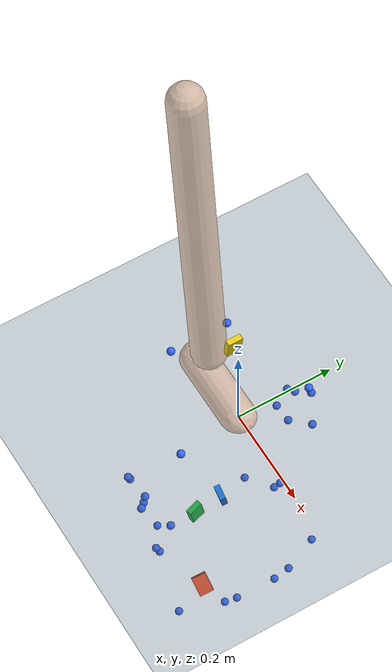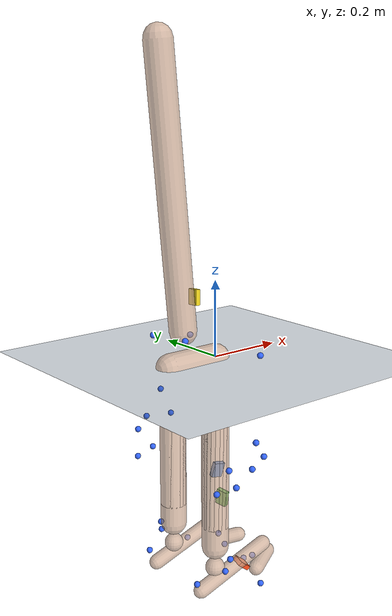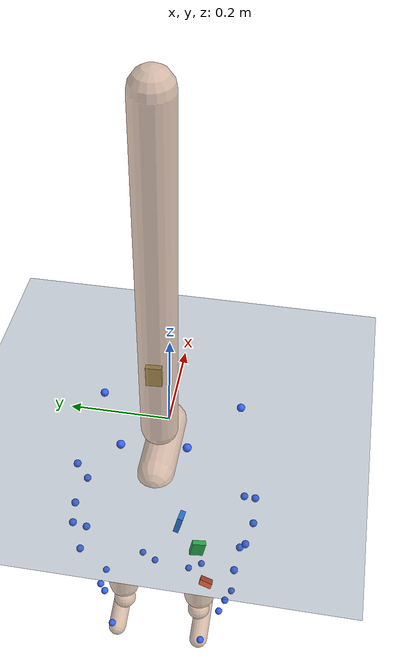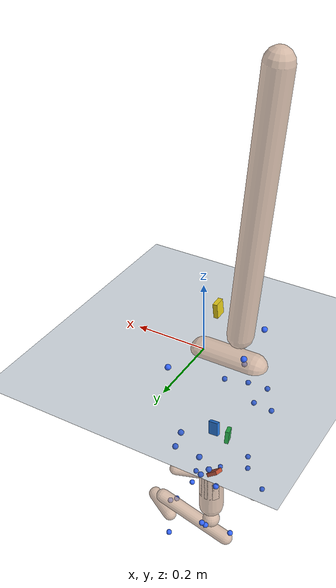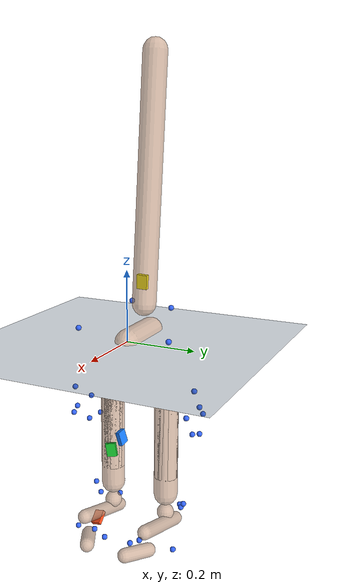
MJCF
<mujoco model="AB06">
  <compiler angle="radian" autolimits="true"/>
  <option timestep="0.005" gravity="0 0 -9.81"><flag contact="disable"/></option>
  <visual><global offwidth="1280" offheight="720"/></visual>
  <default><joint limited="false" damping="0"/><geom contype="0" conaffinity="0"/></default>
  <asset>
    <texture name="grid" type="2d" builtin="checker" rgb1="0.2 0.3 0.4" rgb2="0.3 0.4 0.5" width="512" height="512"/>
    <material name="grid" texture="grid" texrepeat="2 2" texuniform="true"/>
    <material name="skin" rgba="0.8 0.65 0.55 0.7"/>
  </asset>
  <worldbody>
    <light pos="0 0 4" dir="0 0 -1"/>
    <geom name="floor" type="plane" size="0 0 0.05" material="grid"/>
    <body name="pelvis" pos="0 0 0" quat="1 0 0 0">
      <joint name="pelvis_tx" type="slide" axis="1 0 0"/>
      <joint name="pelvis_ty" type="slide" axis="0 0 1"/>
      <joint name="pelvis_tz" type="slide" axis="0 -1 0"/>
      <joint name="pelvis_tilt" type="hinge" axis="0 -1 0"/>
      <joint name="pelvis_list" type="hinge" axis="1 0 0"/>
      <joint name="pelvis_rotation" type="hinge" axis="0 0 1"/>
      <inertial pos="-0.07372656 0 0" mass="12.2367" diaginertia="0.12236747 0.12236747 0.12236747"/>
      <geom type="capsule" fromto="0 0 0 -0.14745312 0 0" size="0.035" material="skin" mass="0"/>
      <site name="m_R_ASIS" pos="0.027854749 -0.13877781 0.029340818" size="0.008" rgba="0.2 0.4 1 1" group="2"/>
      <site name="m_L_ASIS" pos="0.025819645 0.1363009 0.02485285" size="0.008" rgba="0.2 0.4 1 1" group="2"/>
      <site name="m_L_PSIS" pos="-0.14893131 0.064937575 0.06978299" size="0.008" rgba="0.2 0.4 1 1" group="2"/>
      <site name="m_R_PSIS" pos="-0.14399251 -0.058138647 0.079055027" size="0.008" rgba="0.2 0.4 1 1" group="2"/>
      <body name="femur_r" pos="-0.07372656 -0.087074508 -0.068929641" quat="1 0 0 0">
        <joint name="hip_flexion_r" type="hinge" axis="0 -1 0"/>
        <joint name="hip_adduction_r" type="hinge" axis="1 0 0"/>
        <joint name="hip_rotation_r" type="hinge" axis="0 0 1"/>
        <inertial pos="0 0 -0.174591" mass="9.6645" diaginertia="0.096645049 0.096645049 0.096645049"/>
        <geom type="capsule" fromto="0 0 0 0 0 -0.34918199" size="0.035" material="skin" mass="0"/>
        <site name="m_R_Thigh_Upper" pos="0.045811523 -0.10073196 -0.10226908" size="0.008" rgba="0.2 0.4 1 1" group="2"/>
        <site name="m_R_Thigh_Front" pos="0.096388207 -0.075696202 -0.16033469" size="0.008" rgba="0.2 0.4 1 1" group="2"/>
        <site name="m_R_Thigh_Rear" pos="0.032320847 -0.10280851 -0.16778529" size="0.008" rgba="0.2 0.4 1 1" group="2"/>
        <site name="m_R_Knee_Lat" pos="0.0014195441 -0.058915581 -0.419902" size="0.008" rgba="0.2 0.4 1 1" group="2"/>
        <site name="imu_thigh" type="box" size="0.02 0.015 0.006" pos="0.056247425 0.058526741 -0.22793858" quat="0.51204521 0.55384469 -0.53906154 0.37480451" rgba="0.1 0.5 1 1" group="1"/>
        <body name="tibia_r" pos="0 0 0" quat="1 0 0 0">
          <joint name="knee_r_translation1" type="slide" axis="1 0 0"/>
          <joint name="knee_r_translation2" type="slide" axis="0 0 1"/>
          <joint name="knee_angle_r" type="hinge" axis="0 -1 0"/>
          <inertial pos="0 0 -0.20210518" mass="3.85223" diaginertia="0.038522321 0.038522321 0.038522321"/>
          <geom type="capsule" fromto="0 0 0 0 0 -0.40421036" size="0.035" material="skin" mass="0"/>
          <site name="m_R_Shank_Upper" pos="-0.034423126 -0.093363182 -0.15639366" size="0.008" rgba="0.2 0.4 1 1" group="2"/>
          <site name="m_R_Shank_Front" pos="0.00035935059 -0.080800173 -0.21565864" size="0.008" rgba="0.2 0.4 1 1" group="2"/>
          <site name="m_R_Shank_Rear" pos="-0.059069742 -0.076391094 -0.21735671" size="0.008" rgba="0.2 0.4 1 1" group="2"/>
          <site name="m_R_Ankle_Lat" pos="-0.0054319929 -0.04745014 -0.45657552" size="0.008" rgba="0.2 0.4 1 1" group="2"/>
          <site name="imu_shank" type="box" size="0.02 0.015 0.006" pos="0.035111023 0.013497663 -0.28461256" quat="0.70862861 -0.024266526 0.6902225 0.14439363" rgba="0.1 0.8 0.2 1" group="1"/>
          <body name="talus_r" pos="0 0 -0.4654806" quat="1 0 0 0">
            <joint name="ankle_angle_r" type="hinge" axis="-0.10501355 -0.97912632 -0.17402245"/>
            <inertial pos="0 0 0" mass="0.103904" diaginertia="0.0010390377 0.0010390377 0.0010390377"/>
            <geom type="sphere" size="0.025" material="skin" mass="0"/>
            <body name="calcn_r" pos="-0.05279416 -0.0085735031 -0.045411421" quat="1 0 0 0">
              <joint name="subtalar_angle_r" type="hinge" axis="0.78717961 0.12094949 0.60474746"/>
              <inertial pos="0.10557781 0 0.031673342" mass="1.2988" diaginertia="0.012987971 0.012987971 0.012987971"/>
              <geom type="capsule" fromto="0 0 0 0.21115561 0 0.063346684" size="0.02" material="skin" mass="0"/>
              <site name="m_R_Heel" pos="-0.018906522 -0.0065209078 0.027134617" size="0.008" rgba="0.2 0.4 1 1" group="2"/>
              <site name="m_R_Toe_Lat" pos="0.15320158 -0.057721901 -0.010109992" size="0.008" rgba="0.2 0.4 1 1" group="2"/>
              <site name="m_R_Toe_Med" pos="0.19219709 0.053735367 0.0021870993" size="0.008" rgba="0.2 0.4 1 1" group="2"/>
              <site name="m_R_Toe_Tip" pos="0.19640197 0.023192682 0.022142635" size="0.008" rgba="0.2 0.4 1 1" group="2"/>
              <site name="imu_foot" type="box" size="0.02 0.015 0.006" pos="0.1412519 0.0042389761 0.026602154" quat="0.93492248 0.13177433 0.32829929 -0.027839751" rgba="1 0.3 0.1 1" group="1"/>
              <body name="toes_r" pos="0.18877312 -0.0011402403 -0.0021115561" quat="1 0 0 0">
                <joint name="mtp_angle_r" type="hinge" axis="-0.5809544 -0.81393611 0"/>
                <inertial pos="0.036529921 0.018476116 0.0063346684" mass="0.225056" diaginertia="0.0022505556 0.0022505556 0.0022505556"/>
                <geom type="capsule" fromto="0 0 0 0.073059842 0.036952232 0.012669337" size="0.02" material="skin" mass="0"/>
              </body>
            </body>
          </body>
        </body>
      </body>
      <body name="femur_l" pos="-0.07372656 0.087074508 -0.068929641" quat="1 0 0 0">
        <joint name="hip_flexion_l" type="hinge" axis="0 -1 0"/>
        <joint name="hip_adduction_l" type="hinge" axis="-1 0 0"/>
        <joint name="hip_rotation_l" type="hinge" axis="0 0 -1"/>
        <inertial pos="0 0 -0.174591" mass="9.6645" diaginertia="0.096645049 0.096645049 0.096645049"/>
        <geom type="capsule" fromto="0 0 0 0 0 -0.34918199" size="0.035" material="skin" mass="0"/>
        <site name="m_L_Thigh_Upper" pos="0.035039299 0.098625854 -0.058245235" size="0.008" rgba="0.2 0.4 1 1" group="2"/>
        <site name="m_L_Thigh_Front" pos="0.060365593 0.086992548 -0.12989462" size="0.008" rgba="0.2 0.4 1 1" group="2"/>
        <site name="m_L_Thigh_Rear" pos="-0.016339378 0.094992677 -0.12364532" size="0.008" rgba="0.2 0.4 1 1" group="2"/>
        <site name="m_L_Knee_Lat" pos="-0.0011496983 0.056660061 -0.4263916" size="0.008" rgba="0.2 0.4 1 1" group="2"/>
        <body name="tibia_l" pos="0 0 0" quat="1 0 0 0">
          <joint name="knee_l_translation1" type="slide" axis="1 0 0"/>
          <joint name="knee_l_translation2" type="slide" axis="0 0 1"/>
          <joint name="knee_angle_l" type="hinge" axis="0 -1 0"/>
          <inertial pos="0 0 -0.20210518" mass="3.85223" diaginertia="0.038522321 0.038522321 0.038522321"/>
          <geom type="capsule" fromto="0 0 0 0 0 -0.40421036" size="0.035" material="skin" mass="0"/>
          <site name="m_L_Shank_Upper" pos="-0.044614918 0.095068893 -0.15446153" size="0.008" rgba="0.2 0.4 1 1" group="2"/>
          <site name="m_L_Shank_Front" pos="-0.010032442 0.077017382 -0.20756402" size="0.008" rgba="0.2 0.4 1 1" group="2"/>
          <site name="m_L_Shank_Rear" pos="-0.057695936 0.080358344 -0.22413387" size="0.008" rgba="0.2 0.4 1 1" group="2"/>
          <site name="m_L_Ankle_Lat" pos="-0.007053604 0.046413424 -0.44320175" size="0.008" rgba="0.2 0.4 1 1" group="2"/>
          <body name="talus_l" pos="0 0 -0.4654806" quat="1 0 0 0">
            <joint name="ankle_angle_l" type="hinge" axis="0.10501355 -0.97912632 0.17402245"/>
            <inertial pos="0 0 0" mass="0.103904" diaginertia="0.0010390377 0.0010390377 0.0010390377"/>
            <geom type="sphere" size="0.025" material="skin" mass="0"/>
            <body name="calcn_l" pos="-0.05279416 0.0085735031 -0.045411421" quat="1 0 0 0">
              <joint name="subtalar_angle_l" type="hinge" axis="-0.78717961 0.12094949 -0.60474746"/>
              <inertial pos="0.10557781 0 0.031673342" mass="1.2988" diaginertia="0.012987971 0.012987971 0.012987971"/>
              <geom type="capsule" fromto="0 0 0 0.21115561 0 0.063346684" size="0.02" material="skin" mass="0"/>
              <site name="m_L_Heel" pos="-0.018003608 0.0069674716 0.038525804" size="0.008" rgba="0.2 0.4 1 1" group="2"/>
              <site name="m_L_Toe_Lat" pos="0.15456552 0.06132007 -0.0033592924" size="0.008" rgba="0.2 0.4 1 1" group="2"/>
              <site name="m_L_Toe_Med" pos="0.19670561 -0.052859949 0.0078909798" size="0.008" rgba="0.2 0.4 1 1" group="2"/>
              <site name="m_L_Toe_Tip" pos="0.19992346 -0.021978393 0.027672546" size="0.008" rgba="0.2 0.4 1 1" group="2"/>
              <body name="toes_l" pos="0.18877312 0.0011402403 -0.0021115561" quat="1 0 0 0">
                <joint name="mtp_angle_l" type="hinge" axis="0.5809544 -0.81393611 0"/>
                <inertial pos="0.036529921 -0.018476116 0.0063346684" mass="0.225056" diaginertia="0.0022505556 0.0022505556 0.0022505556"/>
                <geom type="capsule" fromto="0 0 0 0.073059842 -0.036952232 0.012669337" size="0.02" material="skin" mass="0"/>
              </body>
            </body>
          </body>
        </body>
      </body>
      <body name="torso" pos="-0.10501081 0 0.084988891" quat="1 0 0 0">
        <joint name="lumbar_extension" type="hinge" axis="0 -1 0"/>
        <joint name="lumbar_bending" type="hinge" axis="1 0 0"/>
        <joint name="lumbar_rotation" type="hinge" axis="0 0 1"/>
        <inertial pos="-0.032448506 0 0.3461174" mass="35.5731" diaginertia="0.35573117 0.35573117 0.35573117"/>
        <geom type="capsule" fromto="0 0 0 -0.064897012 0 0.69223479" size="0.035" material="skin" mass="0"/>
        <site name="imu_trunk" type="box" size="0.02 0.015 0.006" pos="0.052934479 0.020723782 0.076222348" quat="0.68465922 -0.022681094 0.72836786 -0.014407739" rgba="0.9 0.8 0.1 1" group="1"/>
      </body>
    </body>
  </worldbody>
  <sensor>
<accelerometer name="imu_foot_acc" site="imu_foot"/>
<gyro name="imu_foot_gyr" site="imu_foot"/>
<accelerometer name="imu_shank_acc" site="imu_shank"/>
<gyro name="imu_shank_gyr" site="imu_shank"/>
<accelerometer name="imu_thigh_acc" site="imu_thigh"/>
<gyro name="imu_thigh_gyr" site="imu_thigh"/>
<accelerometer name="imu_trunk_acc" site="imu_trunk"/>
<gyro name="imu_trunk_gyr" site="imu_trunk"/>
</sensor>
</mujoco>
